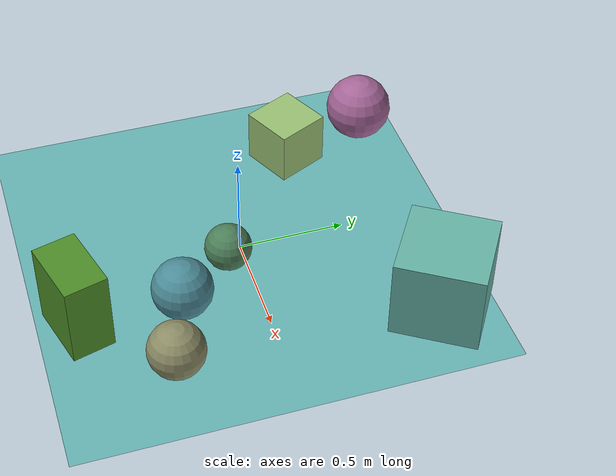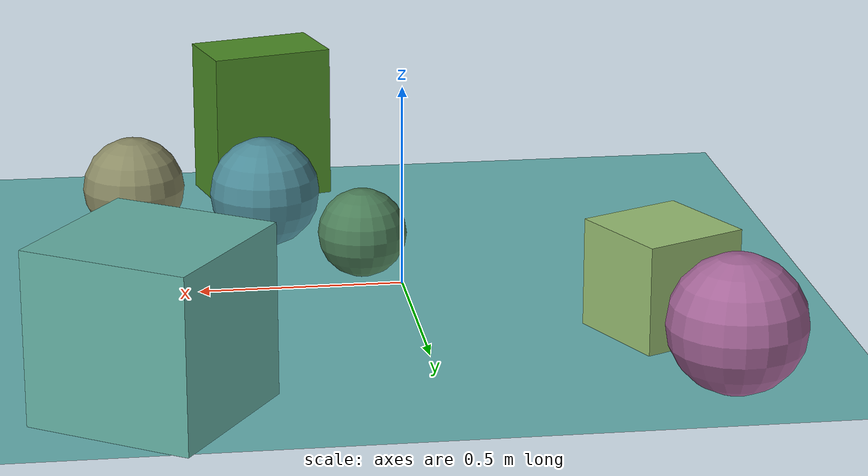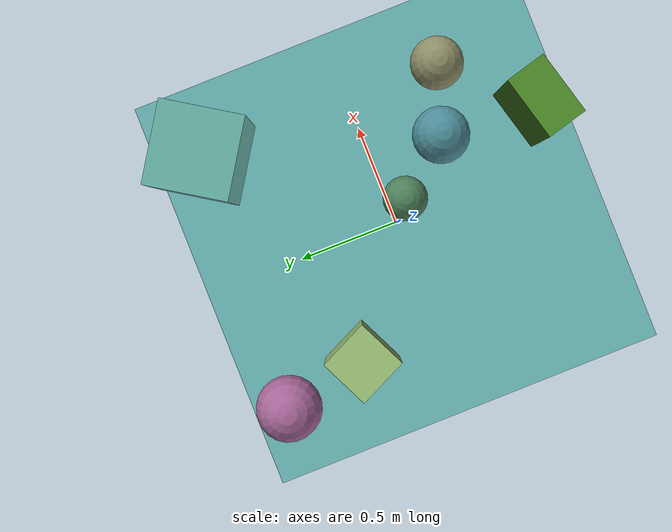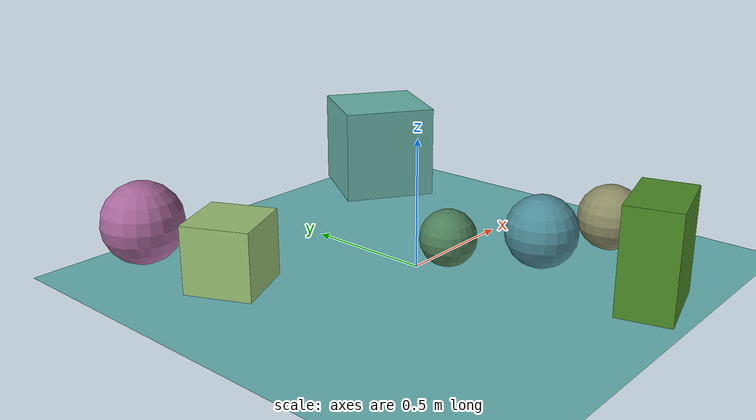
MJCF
<mujoco>
   <asset>
<texture type="skybox" builtin="gradient" rgb1="0.7 0.2 0.3" rgb2="0.9 0.7 0.1" width="256" height="256"/>
<texture name="checker_0" builtin="checker" rgb1="0.5 0.3 0.2" rgb2="0.1 0.8 0.1" width="200" height="200"/>
<texture name="gradient_1" builtin="gradient" rgb1="0.5 0.5 0.4" rgb2="0.1 0.6 0.8" width="200" height="200"/>
<texture name="checker_2" builtin="checker" rgb1="0.3 0.8 0.8" rgb2="0.5 0.6 0.5" width="200" height="200"/>
<texture name="gradient_3" builtin="gradient" rgb1="0.2 0.4 0.6" rgb2="0.9 0.7 0.2" width="200" height="200"/>
<texture name="checker_4" builtin="checker" rgb1="0.3 0.5 0.7" rgb2="0.9 1.0 0.2" width="200" height="200"/>
<texture name="gradient_5" builtin="gradient" rgb1="0.4 0.7 0.1" rgb2="0.2 0.3 0.6" width="200" height="200"/>
<texture name="checker_6" builtin="checker" rgb1="0.4 0.4 0.4" rgb2="0.9 0.4 0.8" width="200" height="200"/><material name="checker_0_mat" reflectance="0" texrepeat="5 5" texture="checker_0" texuniform="false" />
<material name="gradient_1_mat" reflectance="0" texture="gradient_1" texuniform="true"/>
<material name="checker_2_mat" reflectance="0" texrepeat="8 8" texture="checker_2" texuniform="false" />
<material name="gradient_3_mat" reflectance="0" texture="gradient_3" texuniform="true"/>
<material name="checker_4_mat" reflectance="0" texrepeat="3 3" texture="checker_4" texuniform="false" />
<material name="gradient_5_mat" reflectance="0" texture="gradient_5" texuniform="true"/>
<material name="checker_6_mat" reflectance="0" texrepeat="2 2" texture="checker_6" texuniform="false" />
   </asset>

   <worldbody>
      <light diffuse=".9 .9 .9" pos="0 0 3" dir="0 0 -1"/>
     <geom type="plane" size="1 1 0.1" rgba="0.4 0.7 0.7 1"/>
<geom type="box" pos="0.28 -0.82 0.2" size="0.16 0.1 0.2" material="checker_0_mat" euler="0 0 15" />
<geom type="sphere" pos="0.31 -0.35 0.14" size="0.14 0.14 0.14" material="gradient_1_mat" euler="0 0 73" />
<geom type="box" pos="0.64 0.75 0.2" size="0.2 0.2 0.2" material="checker_2_mat" euler="0 0 57" />
<geom type="sphere" pos="0.64 -0.46 0.13" size="0.13 0.13 0.13" material="gradient_3_mat" euler="0 0 36" />
<geom type="box" pos="-0.56 0.4 0.13" size="0.13 0.13 0.13" material="checker_4_mat" euler="0 0 25" />
<geom type="sphere" pos="0.09 -0.08 0.11" size="0.11 0.11 0.11" material="gradient_5_mat" euler="0 0 45" />
<geom type="sphere" pos="-0.64 0.81 0.16" size="0.16 0.16 0.16" material="checker_6_mat" euler="0 0 29" /><camera euler="60 0 180" fovy="60" name="camera1" pos="-0.2 -1.5 1"></camera>   </worldbody>
</mujoco>
